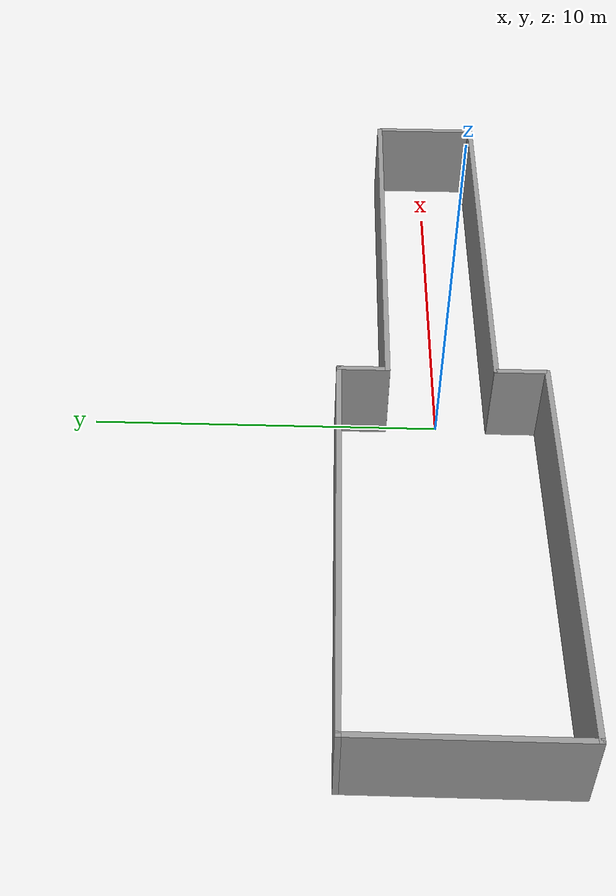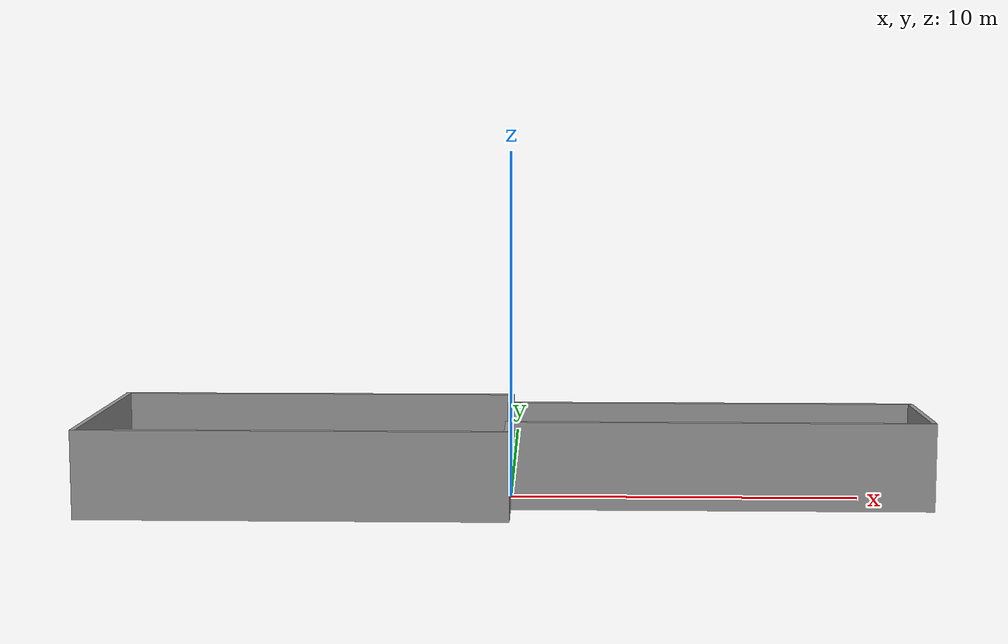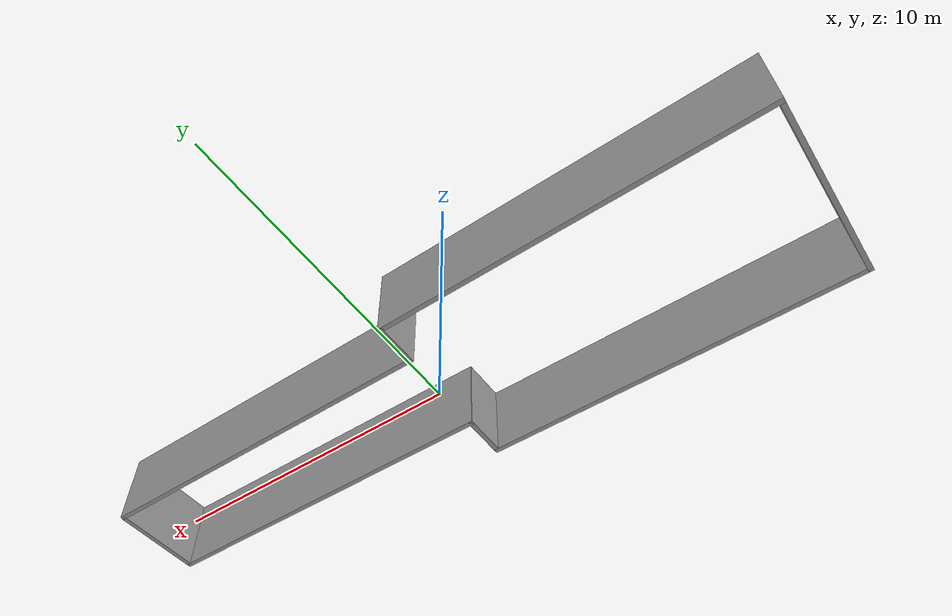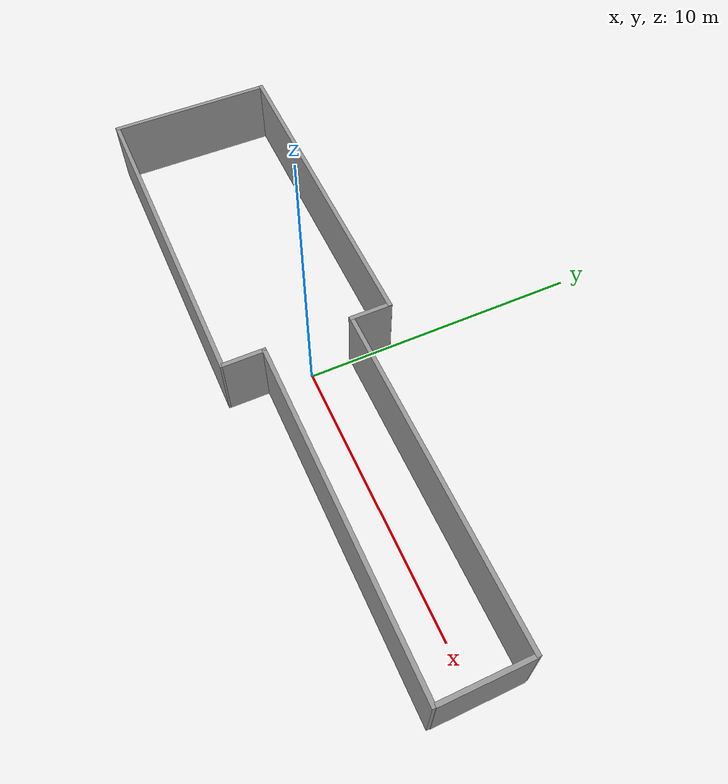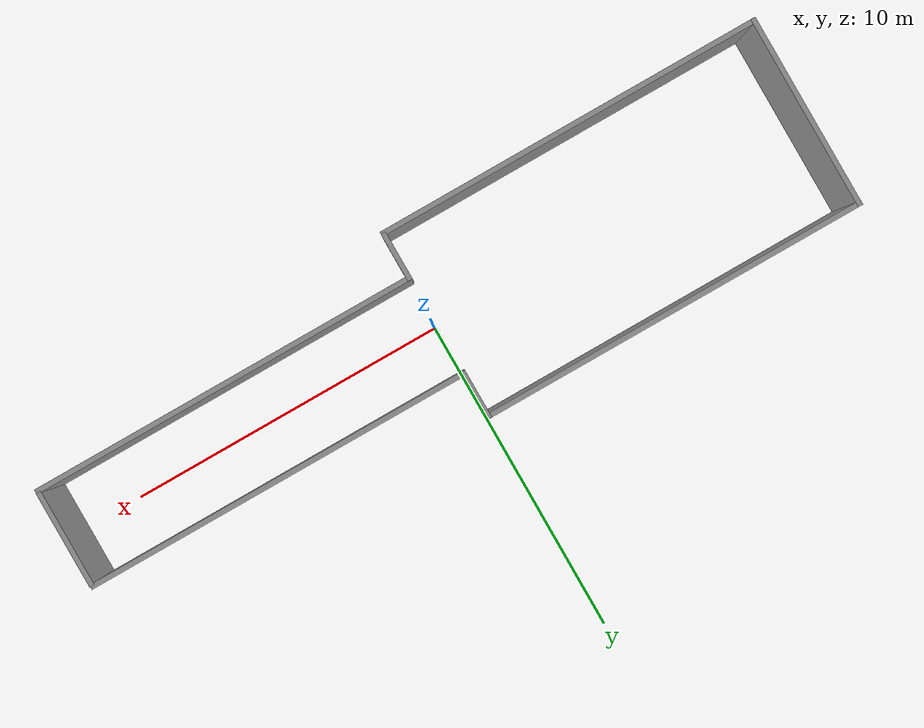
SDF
<?xml version='1.0'?>
<sdf version='1.7'>
  <model name='hl_24m_6m_3m'>
    <pose>-0.059124 -0.027778 0 0 -0 0</pose>
    <link name='Wall_10'>
      <collision name='Wall_10_Collision'>
        <geometry>
          <box>
            <size>6 0.15 2.5</size>
          </box>
        </geometry>
        <pose>0 0 1.25 0 -0 0</pose>
      </collision>
      <visual name='Wall_10_Visual'>
        <pose>0 0 1.25 0 -0 0</pose>
        <geometry>
          <box>
            <size>6 0.15 2.5</size>
          </box>
        </geometry>
        <material>
          <script>
            <uri>file://media/materials/scripts/gazebo.material</uri>
            <name>Gazebo/Grey</name>
          </script>
          <ambient>1 1 1 1</ambient>
        </material>
        <meta>
          <layer>0</layer>
        </meta>
      </visual>
      <pose>-11.8669 0.002416 0 0 -0 -1.5708</pose>
    </link>
    <link name='Wall_13'>
      <collision name='Wall_13_Collision'>
        <geometry>
          <box>
            <size>1.5 0.15 2.5</size>
          </box>
        </geometry>
        <pose>0 0 1.25 0 -0 0</pose>
      </collision>
      <visual name='Wall_13_Visual'>
        <pose>0 0 1.25 0 -0 0</pose>
        <geometry>
          <box>
            <size>1.5 0.15 2.5</size>
          </box>
        </geometry>
        <material>
          <script>
            <uri>file://media/materials/scripts/gazebo.material</uri>
            <name>Gazebo/Grey</name>
          </script>
          <ambient>1 1 1 1</ambient>
        </material>
        <meta>
          <layer>0</layer>
        </meta>
      </visual>
      <pose>-0.0062 2.23979 0 0 -0 -1.5708</pose>
    </link>
    <link name='Wall_15'>
      <collision name='Wall_15_Collision'>
        <geometry>
          <box>
            <size>1.5 0.15 2.5</size>
          </box>
        </geometry>
        <pose>0 0 1.25 0 -0 0</pose>
      </collision>
      <visual name='Wall_15_Visual'>
        <pose>0 0 1.25 0 -0 0</pose>
        <geometry>
          <box>
            <size>1.5 0.15 2.5</size>
          </box>
        </geometry>
        <material>
          <script>
            <uri>file://media/materials/scripts/gazebo.material</uri>
            <name>Gazebo/Grey</name>
          </script>
          <ambient>1 1 1 1</ambient>
        </material>
        <meta>
          <layer>0</layer>
        </meta>
      </visual>
      <pose>-0.0062 -2.18561 0 0 -0 -1.5708</pose>
    </link>
    <link name='Wall_17'>
      <collision name='Wall_17_Collision'>
        <geometry>
          <box>
            <size>3 0.15 2.5</size>
          </box>
        </geometry>
        <pose>0 0 1.25 0 -0 0</pose>
      </collision>
      <visual name='Wall_17_Visual'>
        <pose>0 0 1.25 0 -0 0</pose>
        <geometry>
          <box>
            <size>3 0.15 2.5</size>
          </box>
        </geometry>
        <material>
          <script>
            <uri>file://media/materials/scripts/gazebo.material</uri>
            <name>Gazebo/Grey</name>
          </script>
          <ambient>1 1 1 1</ambient>
        </material>
        <meta>
          <layer>0</layer>
        </meta>
      </visual>
      <pose>11.8712 0.043852 0 0 -0 -1.5708</pose>
    </link>
    <link name='Wall_2'>
      <collision name='Wall_2_Collision'>
        <geometry>
          <box>
            <size>12 0.15 2.5</size>
          </box>
        </geometry>
        <pose>0 0 1.25 0 -0 0</pose>
      </collision>
      <visual name='Wall_2_Visual'>
        <pose>0 0 1.25 0 -0 0</pose>
        <geometry>
          <box>
            <size>12 0.15 2.5</size>
          </box>
        </geometry>
        <material>
          <script>
            <uri>file://media/materials/scripts/gazebo.material</uri>
            <name>Gazebo/Grey</name>
          </script>
          <ambient>1 1 1 1</ambient>
        </material>
        <meta>
          <layer>0</layer>
        </meta>
      </visual>
      <pose>-5.94623 2.92899 0 0 -0 0</pose>
    </link>
    <link name='Wall_4'>
      <collision name='Wall_4_Collision'>
        <geometry>
          <box>
            <size>12 0.15 2.5</size>
          </box>
        </geometry>
        <pose>0 0 1.25 0 -0 0</pose>
      </collision>
      <visual name='Wall_4_Visual'>
        <pose>0 0 1.25 0 -0 0</pose>
        <geometry>
          <box>
            <size>12 0.15 2.5</size>
          </box>
        </geometry>
        <material>
          <script>
            <uri>file://media/materials/scripts/gazebo.material</uri>
            <name>Gazebo/Grey</name>
          </script>
          <ambient>1 1 1 1</ambient>
        </material>
        <meta>
          <layer>0</layer>
        </meta>
      </visual>
      <pose>5.92009 1.56099 0 0 -0 0</pose>
    </link>
    <link name='Wall_6'>
      <collision name='Wall_6_Collision'>
        <geometry>
          <box>
            <size>12 0.15 2.5</size>
          </box>
        </geometry>
        <pose>0 0 1.25 0 -0 0</pose>
      </collision>
      <visual name='Wall_6_Visual'>
        <pose>0 0 1.25 0 -0 0</pose>
        <geometry>
          <box>
            <size>12 0.15 2.5</size>
          </box>
        </geometry>
        <material>
          <script>
            <uri>file://media/materials/scripts/gazebo.material</uri>
            <name>Gazebo/Grey</name>
          </script>
          <ambient>1 1 1 1</ambient>
        </material>
        <meta>
          <layer>0</layer>
        </meta>
      </visual>
      <pose>5.93239 -1.49496 0 0 -0 0</pose>
    </link>
    <link name='Wall_8'>
      <collision name='Wall_8_Collision'>
        <geometry>
          <box>
            <size>12 0.15 2.5</size>
          </box>
        </geometry>
        <pose>0 0 1.25 0 -0 0</pose>
      </collision>
      <visual name='Wall_8_Visual'>
        <pose>0 0 1.25 0 -0 0</pose>
        <geometry>
          <box>
            <size>12 0.15 2.5</size>
          </box>
        </geometry>
        <material>
          <script>
            <uri>file://media/materials/scripts/gazebo.material</uri>
            <name>Gazebo/Grey</name>
          </script>
          <ambient>1 1 1 1</ambient>
        </material>
        <meta>
          <layer>0</layer>
        </meta>
      </visual>
      <pose>-5.94013 -2.92899 0 0 -0 0</pose>
    </link>
    <static>1</static>
  </model>
</sdf>
